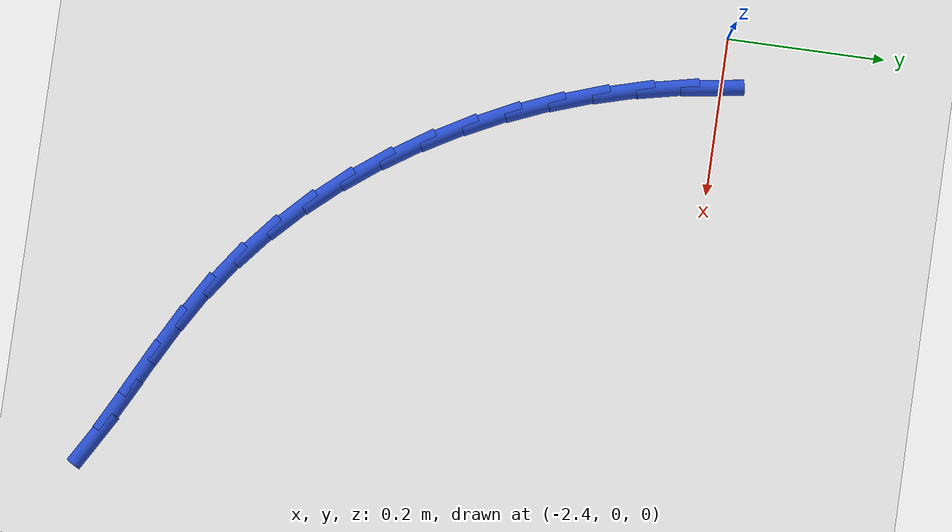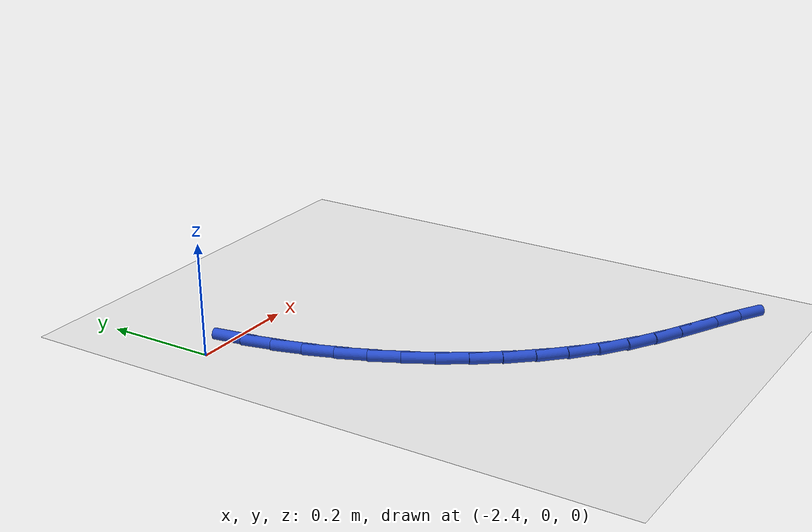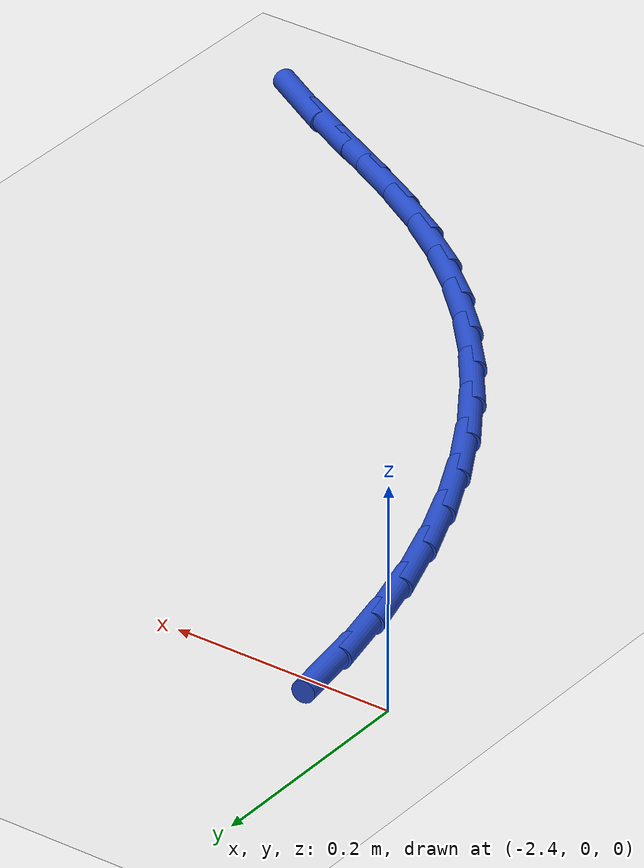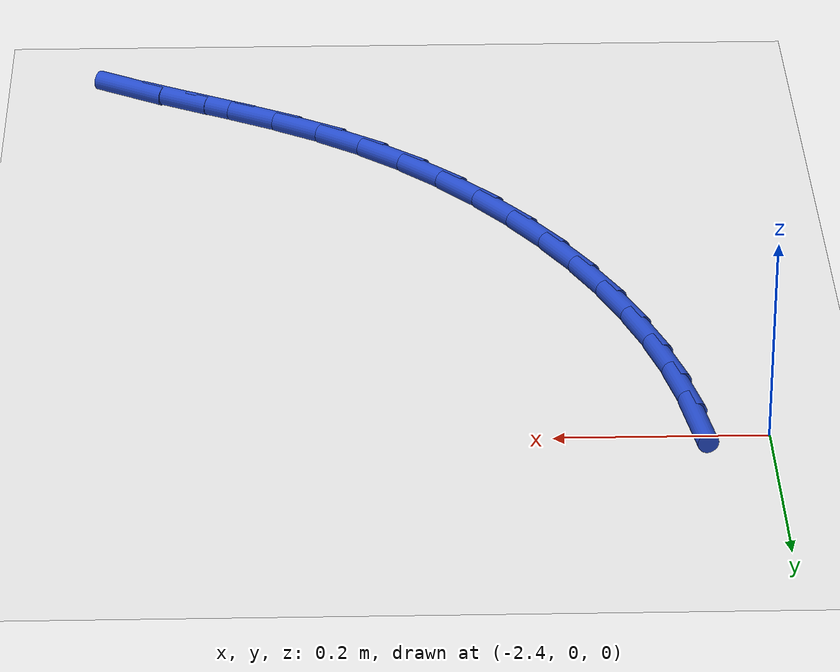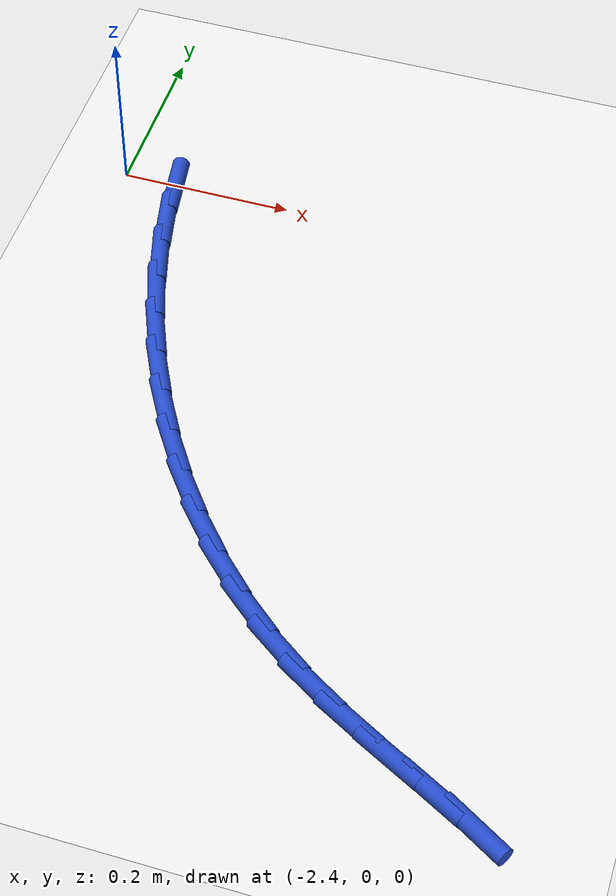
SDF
<sdf version="1.6">
 <world name="default">
  <model name="ground_plane">
   <static>1</static>
   <link name="link">
    <collision name="collision">
     <geometry><plane><normal>0 0 1</normal><size>100 100</size></plane></geometry>
     <surface><friction><ode><mu>100</mu><mu2>50</mu2></ode></friction></surface>
    </collision>
    <visual name="visual">
     <cast_shadows>0</cast_shadows>
     <geometry><plane><normal>0 0 1</normal><size>100 100</size></plane></geometry>
     <material>
      <script><uri>file://media/materials/scripts/gazebo.material</uri><name>Gazebo/WhiteGlow</name></script>
     </material>
    </visual>
   </link>
  </model>
  <model name="line">
   <link name="link_71">
    <pose>-2.334385722236039 -0.011057234873687241 0.01 0 1.57 -1.4190256809080213</pose>
    <collision name="collision">
     <geometry><cylinder><radius>0.01</radius><length>0.08</length></cylinder></geometry>
    </collision>
    <visual name="visual">
     <material>
      <script><name>Gazebo/Blue</name><uri>file://media/materials/scripts/gazebo.material</uri></script>
     </material>
     <geometry><cylinder><radius>0.01</radius><length>0.08</length></cylinder></geometry>
    </visual>
   </link>
   <link name="link_72">
    <pose>-2.325973205463485 -0.06606013144973769 0.01 0 1.57 -1.3559845635253618</pose>
    <collision name="collision">
     <geometry><cylinder><radius>0.01</radius><length>0.08</length></cylinder></geometry>
    </collision>
    <visual name="visual">
     <material>
      <script><name>Gazebo/Blue</name><uri>file://media/materials/scripts/gazebo.material</uri></script>
     </material>
     <geometry><cylinder><radius>0.01</radius><length>0.08</length></cylinder></geometry>
    </visual>
   </link>
   <link name="link_73">
    <pose>-2.314032024001246 -0.12079150229894628 0.01 0 1.57 -1.294248490838585</pose>
    <collision name="collision">
     <geometry><cylinder><radius>0.01</radius><length>0.08</length></cylinder></geometry>
    </collision>
    <visual name="visual">
     <material>
      <script><name>Gazebo/Blue</name><uri>file://media/materials/scripts/gazebo.material</uri></script>
     </material>
     <geometry><cylinder><radius>0.01</radius><length>0.08</length></cylinder></geometry>
    </visual>
   </link>
   <link name="link_74">
    <pose>-2.2986625691365363 -0.17494354605225665 0.01 0 1.57 -1.2332083232858182</pose>
    <collision name="collision">
     <geometry><cylinder><radius>0.01</radius><length>0.08</length></cylinder></geometry>
    </collision>
    <visual name="visual">
     <material>
      <script><name>Gazebo/Blue</name><uri>file://media/materials/scripts/gazebo.material</uri></script>
     </material>
     <geometry><cylinder><radius>0.01</radius><length>0.08</length></cylinder></geometry>
    </visual>
   </link>
   <link name="link_75">
    <pose>-2.2799652321565684 -0.22820846134061482 0.01 0 1.57 -1.1722637116177694</pose>
    <collision name="collision">
     <geometry><cylinder><radius>0.01</radius><length>0.08</length></cylinder></geometry>
    </collision>
    <visual name="visual">
     <material>
      <script><name>Gazebo/Blue</name><uri>file://media/materials/scripts/gazebo.material</uri></script>
     </material>
     <geometry><cylinder><radius>0.01</radius><length>0.08</length></cylinder></geometry>
    </visual>
   </link>
   <link name="link_76">
    <pose>-2.258040404348558 -0.2802784467949662 0.01 0 1.57 -1.1108210417435693</pose>
    <collision name="collision">
     <geometry><cylinder><radius>0.01</radius><length>0.08</length></cylinder></geometry>
    </collision>
    <visual name="visual">
     <material>
      <script><name>Gazebo/Blue</name><uri>file://media/materials/scripts/gazebo.material</uri></script>
     </material>
     <geometry><cylinder><radius>0.01</radius><length>0.08</length></cylinder></geometry>
    </visual>
   </link>
   <link name="link_77">
    <pose>-2.2329884769997173 -0.33084570104625594 0.01 0 1.57 -1.0482914871741256</pose>
    <collision name="collision">
     <geometry><cylinder><radius>0.01</radius><length>0.08</length></cylinder></geometry>
    </collision>
    <visual name="visual">
     <material>
      <script><name>Gazebo/Blue</name><uri>file://media/materials/scripts/gazebo.material</uri></script>
     </material>
     <geometry><cylinder><radius>0.01</radius><length>0.08</length></cylinder></geometry>
    </visual>
   </link>
   <link name="link_78">
    <pose>-2.204909841397261 -0.37960242272543004 0.01 0 1.57 -0.9840908262998647</pose>
    <collision name="collision">
     <geometry><cylinder><radius>0.01</radius><length>0.08</length></cylinder></geometry>
    </collision>
    <visual name="visual">
     <material>
      <script><name>Gazebo/Blue</name><uri>file://media/materials/scripts/gazebo.material</uri></script>
     </material>
     <geometry><cylinder><radius>0.01</radius><length>0.08</length></cylinder></geometry>
    </visual>
   </link>
   <link name="link_79">
    <pose>-2.1739048888284036 -0.42624081046343243 0.01 0 1.57 -0.9176427914935024</pose>
    <collision name="collision">
     <geometry><cylinder><radius>0.01</radius><length>0.08</length></cylinder></geometry>
    </collision>
    <visual name="visual">
     <material>
      <script><name>Gazebo/Blue</name><uri>file://media/materials/scripts/gazebo.material</uri></script>
     </material>
     <geometry><cylinder><radius>0.01</radius><length>0.08</length></cylinder></geometry>
    </visual>
   </link>
   <link name="link_80">
    <pose>-2.140074010580358 -0.470453062891209 0.01 0 1.57 -0.8483879618926762</pose>
    <collision name="collision">
     <geometry><cylinder><radius>0.01</radius><length>0.08</length></cylinder></geometry>
    </collision>
    <visual name="visual">
     <material>
      <script><name>Gazebo/Blue</name><uri>file://media/materials/scripts/gazebo.material</uri></script>
     </material>
     <geometry><cylinder><radius>0.01</radius><length>0.08</length></cylinder></geometry>
    </visual>
   </link>
   <link name="link_81">
    <pose>-2.1035175979403387 -0.511931378639705 0.01 0 1.57 -0.7758004684172046</pose>
    <collision name="collision">
     <geometry><cylinder><radius>0.01</radius><length>0.08</length></cylinder></geometry>
    </collision>
    <visual name="visual">
     <material>
      <script><name>Gazebo/Blue</name><uri>file://media/materials/scripts/gazebo.material</uri></script>
     </material>
     <geometry><cylinder><radius>0.01</radius><length>0.08</length></cylinder></geometry>
    </visual>
   </link>
   <link name="link_82">
    <pose>-2.0643360421955594 -0.5503679563398665 0.01 0 1.57 -0.6994148171113642</pose>
    <collision name="collision">
     <geometry><cylinder><radius>0.01</radius><length>0.08</length></cylinder></geometry>
    </collision>
    <visual name="visual">
     <material>
      <script><name>Gazebo/Blue</name><uri>file://media/materials/scripts/gazebo.material</uri></script>
     </material>
     <geometry><cylinder><radius>0.01</radius><length>0.08</length></cylinder></geometry>
    </visual>
   </link>
   <link name="link_83">
    <pose>-2.0226297346332336 -0.5854549946226371 0.01 0 1.57 -0.618901962641189</pose>
    <collision name="collision">
     <geometry><cylinder><radius>0.01</radius><length>0.08</length></cylinder></geometry>
    </collision>
    <visual name="visual">
     <material>
      <script><name>Gazebo/Blue</name><uri>file://media/materials/scripts/gazebo.material</uri></script>
     </material>
     <geometry><cylinder><radius>0.01</radius><length>0.08</length></cylinder></geometry>
    </visual>
   </link>
   <link name="link_84">
    <pose>-1.9784999857387948 -0.6168865245403592 0.01 0 1.57 -0.5434845534858664</pose>
    <collision name="collision">
     <geometry><cylinder><radius>0.01</radius><length>0.08</length></cylinder></geometry>
    </collision>
    <visual name="visual">
     <material>
      <script><name>Gazebo/Blue</name><uri>file://media/materials/scripts/gazebo.material</uri></script>
     </material>
     <geometry><cylinder><radius>0.01</radius><length>0.08</length></cylinder></geometry>
    </visual>
   </link>
   <link name="link_85">
    <pose>-1.9322771822967675 -0.6448132406850418 0.01 0 1.57 -0.4951447742859604</pose>
    <collision name="collision">
     <geometry><cylinder><radius>0.01</radius><length>0.08</length></cylinder></geometry>
    </collision>
    <visual name="visual">
     <material>
      <script><name>Gazebo/Blue</name><uri>file://media/materials/scripts/gazebo.material</uri></script>
     </material>
     <geometry><cylinder><radius>0.01</radius><length>0.08</length></cylinder></geometry>
    </visual>
   </link>
   <link name="link_86">
    <pose>-1.8848207275466864 -0.6704404318072357 0.01 0 1.57 -0.47701226002974445</pose>
    <collision name="collision">
     <geometry><cylinder><radius>0.01</radius><length>0.08</length></cylinder></geometry>
    </collision>
    <visual name="visual">
     <material>
      <script><name>Gazebo/Blue</name><uri>file://media/materials/scripts/gazebo.material</uri></script>
     </material>
     <geometry><cylinder><radius>0.01</radius><length>0.08</length></cylinder></geometry>
    </visual>
   </link>
   <link name="link_87">
    <pose>-1.8370644658792625 -0.6951217850720314 0.01 0 1.57 -0.4892523987174185</pose>
    <collision name="collision">
     <geometry><cylinder><radius>0.01</radius><length>0.08</length></cylinder></geometry>
    </collision>
    <visual name="visual">
     <material>
      <script><name>Gazebo/Blue</name><uri>file://media/materials/scripts/gazebo.material</uri></script>
     </material>
     <geometry><cylinder><radius>0.01</radius><length>0.08</length></cylinder></geometry>
    </visual>
   </link>
   <link name="link_88">
    <pose>-1.7899422416852087 -0.7202109876445183 0.01 0 1.57 -0.5326053720112373</pose>
    <collision name="collision">
     <geometry><cylinder><radius>0.01</radius><length>0.08</length></cylinder></geometry>
    </collision>
    <visual name="visual">
     <material>
      <script><name>Gazebo/Blue</name><uri>file://media/materials/scripts/gazebo.material</uri></script>
     </material>
     <geometry><cylinder><radius>0.01</radius><length>0.08</length></cylinder></geometry>
    </visual>
   </link>
  </model>
 </world>
</sdf>
